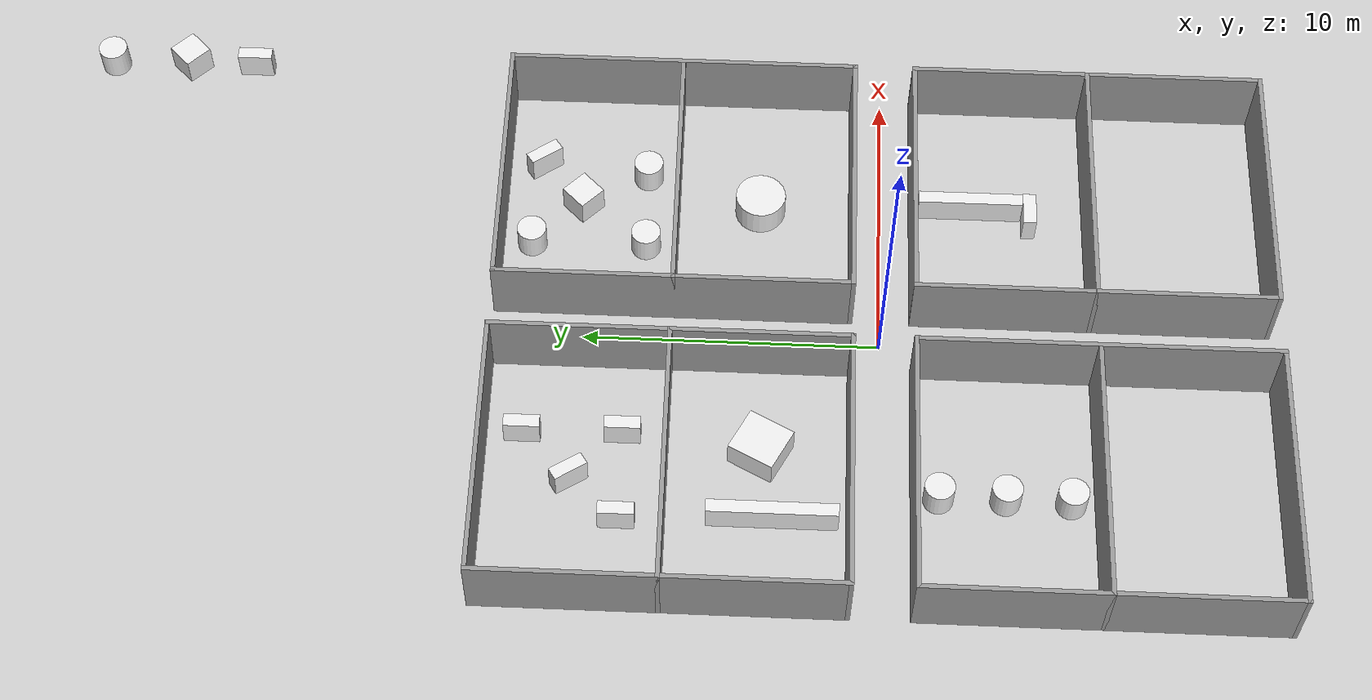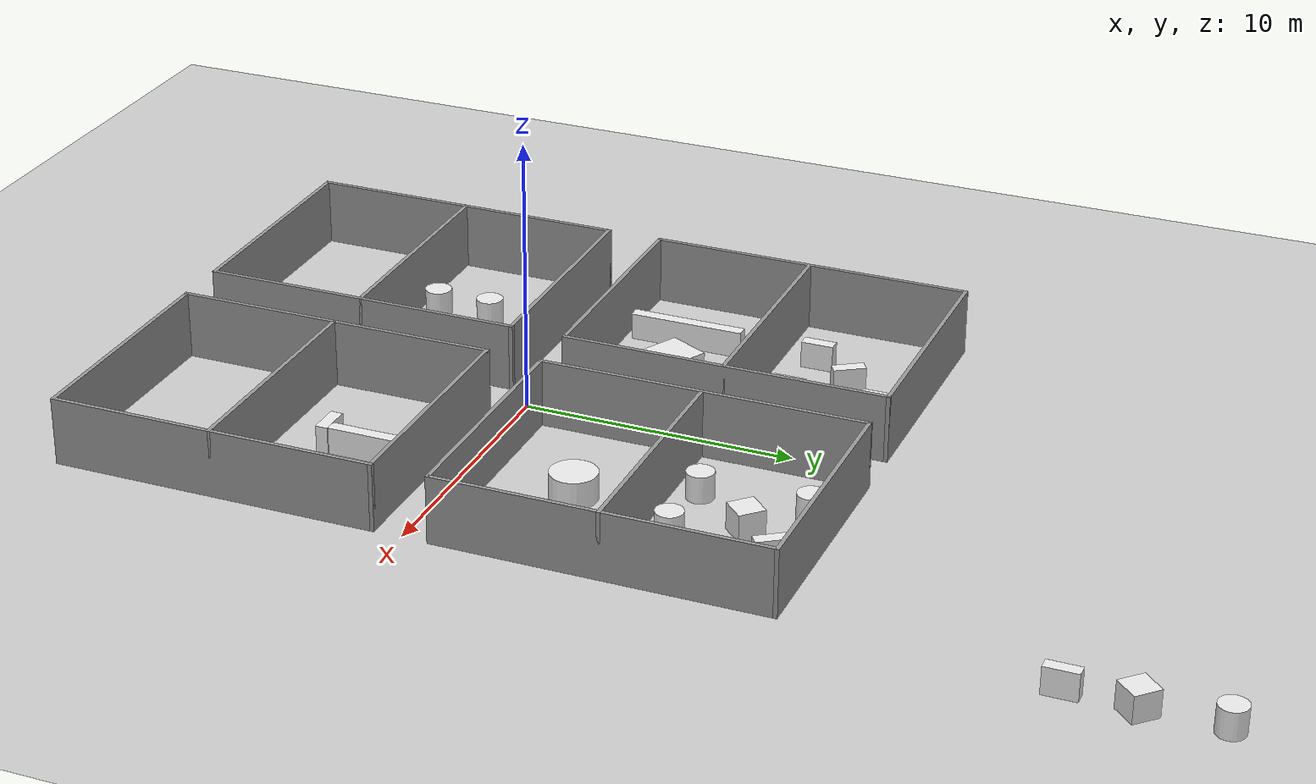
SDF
<sdf version="1.7">
 <world name="default">
  <light name="sun" type="directional">
   <pose>0 0 10 0 -0 0</pose>
   <diffuse>0.8 0.8 0.8 1</diffuse>
   <specular>0.2 0.2 0.2 1</specular>
   <attenuation>
    <range>1000</range>
    <constant>0.9</constant>
    <linear>0.01</linear>
    <quadratic>0.001</quadratic>
   </attenuation>
   <direction>-0.5 0.1 -0.9</direction>
   <spot><inner_angle>0</inner_angle><outer_angle>0</outer_angle><falloff>0</falloff></spot>
  </light>
  <model name="ground_plane">
   <static>1</static>
   <link name="link">
    <collision name="collision">
     <geometry><plane><normal>0 0 1</normal><size>100 100</size></plane></geometry>
     <surface>
      <contact><collide_bitmask>65535</collide_bitmask></contact>
      <friction><ode><mu>100</mu><mu2>50</mu2></ode></friction>
     </surface>
    </collision>
    <visual name="visual">
     <cast_shadows>0</cast_shadows>
     <geometry><plane><normal>0 0 1</normal><size>100 100</size></plane></geometry>
     <material>
      <script><uri>file://media/materials/scripts/gazebo.material</uri><name>Gazebo/Grey</name></script>
     </material>
    </visual>
   </link>
   <static>1</static>
  </model>
  <gravity>0 0 -9.8</gravity>
  <magnetic_field>6e-06 2.3e-05 -4.2e-05</magnetic_field>
  <atmosphere type="adiabatic"/>
  <physics type="ode">
   <max_step_size>0.001</max_step_size>
   <real_time_factor>1</real_time_factor>
   <real_time_update_rate>0</real_time_update_rate>
  </physics>
  <scene><ambient>0.4 0.4 0.4 1</ambient><background>0.7 0.7 0.7 1</background><shadows>1</shadows></scene>
  <spherical_coordinates>
   <surface_model>EARTH_WGS84</surface_model>
   <latitude_deg>0</latitude_deg>
   <longitude_deg>0</longitude_deg>
   <elevation>0</elevation>
   <heading_deg>0</heading_deg>
  </spherical_coordinates>
  <model name="Unit_Room_0">
   <pose>5.0375 6.5375 0 0 -0 0</pose>
   <link name="Wall_11">
    <collision name="Wall_11_Collision">
     <geometry><box><size>12.15 0.15 2.5</size></box></geometry>
     <pose>0 0 1.25 0 -0 0</pose>
    </collision>
    <visual name="Wall_11_Visual">
     <pose>0 0 1.25 0 -0 0</pose>
     <geometry><box><size>12.15 0.15 2.5</size></box></geometry>
     <material>
      <script><uri>file://media/materials/scripts/gazebo.material</uri><name>Gazebo/Grey</name></script>
      <ambient>1 1 1 1</ambient>
     </material>
     <meta><layer>0</layer></meta>
    </visual>
    <pose>4.9625 0.4625 0 0 -0 1.5708</pose>
   </link>
   <link name="Wall_3">
    <collision name="Wall_3_Collision">
     <geometry><box><size>9.15 0.15 2.5</size></box></geometry>
     <pose>0 0 1.25 0 -0 0</pose>
    </collision>
    <visual name="Wall_3_Visual">
     <pose>0 0 1.25 0 -0 0</pose>
     <geometry><box><size>9.15 0.15 2.5</size></box></geometry>
     <material>
      <script><uri>file://media/materials/scripts/gazebo.material</uri><name>Gazebo/Grey</name></script>
      <ambient>1 1 1 1</ambient>
     </material>
     <meta><layer>0</layer></meta>
    </visual>
    <pose>0.4625 -5.5375 0 0 -0 0</pose>
   </link>
   <link name="Wall_5">
    <collision name="Wall_5_Collision">
     <geometry><box><size>9.15 0.15 2.5</size></box></geometry>
     <pose>0 0 1.25 0 -0 0</pose>
    </collision>
    <visual name="Wall_5_Visual">
     <pose>0 0 1.25 0 -0 0</pose>
     <geometry><box><size>9.15 0.15 2.5</size></box></geometry>
     <material>
      <script><uri>file://media/materials/scripts/gazebo.material</uri><name>Gazebo/Grey</name></script>
      <ambient>1 1 1 1</ambient>
     </material>
     <meta><layer>0</layer></meta>
    </visual>
    <pose>0.4625 0.4625 0 0 -0 0</pose>
   </link>
   <link name="Wall_7">
    <collision name="Wall_7_Collision">
     <geometry><box><size>9.15 0.15 2.5</size></box></geometry>
     <pose>0 0 1.25 0 -0 0</pose>
    </collision>
    <visual name="Wall_7_Visual">
     <pose>0 0 1.25 0 -0 0</pose>
     <geometry><box><size>9.15 0.15 2.5</size></box></geometry>
     <material>
      <script><uri>file://media/materials/scripts/gazebo.material</uri><name>Gazebo/Grey</name></script>
      <ambient>1 1 1 1</ambient>
     </material>
     <meta><layer>0</layer></meta>
    </visual>
    <pose>0.4625 6.4625 0 0 -0 0</pose>
   </link>
   <link name="Wall_9">
    <collision name="Wall_9_Collision">
     <geometry><box><size>12.15 0.15 2.5</size></box></geometry>
     <pose>0 0 1.25 0 -0 0</pose>
    </collision>
    <visual name="Wall_9_Visual">
     <pose>0 0 1.25 0 -0 0</pose>
     <geometry><box><size>12.15 0.15 2.5</size></box></geometry>
     <material>
      <script><uri>file://media/materials/scripts/gazebo.material</uri><name>Gazebo/Grey</name></script>
      <ambient>1 1 1 1</ambient>
     </material>
     <meta><layer>0</layer></meta>
    </visual>
    <pose>-4.0375 0.4625 0 0 -0 1.5708</pose>
   </link>
   <static>1</static>
  </model>
  <model name="Unit_Room_1">
   <pose>5.0375 -7.5375 0 0 -0 0</pose>
   <link name="Wall_11">
    <collision name="Wall_11_Collision">
     <geometry><box><size>12.15 0.15 2.5</size></box></geometry>
     <pose>0 0 1.25 0 -0 0</pose>
    </collision>
    <visual name="Wall_11_Visual">
     <pose>0 0 1.25 0 -0 0</pose>
     <geometry><box><size>12.15 0.15 2.5</size></box></geometry>
     <material>
      <script><uri>file://media/materials/scripts/gazebo.material</uri><name>Gazebo/Grey</name></script>
      <ambient>1 1 1 1</ambient>
     </material>
     <meta><layer>0</layer></meta>
    </visual>
    <pose>4.9625 0.4625 0 0 -0 1.5708</pose>
   </link>
   <link name="Wall_3">
    <collision name="Wall_3_Collision">
     <geometry><box><size>9.15 0.15 2.5</size></box></geometry>
     <pose>0 0 1.25 0 -0 0</pose>
    </collision>
    <visual name="Wall_3_Visual">
     <pose>0 0 1.25 0 -0 0</pose>
     <geometry><box><size>9.15 0.15 2.5</size></box></geometry>
     <material>
      <script><uri>file://media/materials/scripts/gazebo.material</uri><name>Gazebo/Grey</name></script>
      <ambient>1 1 1 1</ambient>
     </material>
     <meta><layer>0</layer></meta>
    </visual>
    <pose>0.4625 -5.5375 0 0 -0 0</pose>
   </link>
   <link name="Wall_5">
    <collision name="Wall_5_Collision">
     <geometry><box><size>9.15 0.15 2.5</size></box></geometry>
     <pose>0 0 1.25 0 -0 0</pose>
    </collision>
    <visual name="Wall_5_Visual">
     <pose>0 0 1.25 0 -0 0</pose>
     <geometry><box><size>9.15 0.15 2.5</size></box></geometry>
     <material>
      <script><uri>file://media/materials/scripts/gazebo.material</uri><name>Gazebo/Grey</name></script>
      <ambient>1 1 1 1</ambient>
     </material>
     <meta><layer>0</layer></meta>
    </visual>
    <pose>0.4625 0.4625 0 0 -0 0</pose>
   </link>
   <link name="Wall_7">
    <collision name="Wall_7_Collision">
     <geometry><box><size>9.15 0.15 2.5</size></box></geometry>
     <pose>0 0 1.25 0 -0 0</pose>
    </collision>
    <visual name="Wall_7_Visual">
     <pose>0 0 1.25 0 -0 0</pose>
     <geometry><box><size>9.15 0.15 2.5</size></box></geometry>
     <material>
      <script><uri>file://media/materials/scripts/gazebo.material</uri><name>Gazebo/Grey</name></script>
      <ambient>1 1 1 1</ambient>
     </material>
     <meta><layer>0</layer></meta>
    </visual>
    <pose>0.4625 6.4625 0 0 -0 0</pose>
   </link>
   <link name="Wall_9">
    <collision name="Wall_9_Collision">
     <geometry><box><size>12.15 0.15 2.5</size></box></geometry>
     <pose>0 0 1.25 0 -0 0</pose>
    </collision>
    <visual name="Wall_9_Visual">
     <pose>0 0 1.25 0 -0 0</pose>
     <geometry><box><size>12.15 0.15 2.5</size></box></geometry>
     <material>
      <script><uri>file://media/materials/scripts/gazebo.material</uri><name>Gazebo/Grey</name></script>
      <ambient>1 1 1 1</ambient>
     </material>
     <meta><layer>0</layer></meta>
    </visual>
    <pose>-4.0375 0.4625 0 0 -0 1.5708</pose>
   </link>
   <static>1</static>
  </model>
  <model name="Unit_Room_2">
   <pose>-6.0375 6.5375 0 0 -0 0</pose>
   <link name="Wall_11">
    <collision name="Wall_11_Collision">
     <geometry><box><size>12.15 0.15 2.5</size></box></geometry>
     <pose>0 0 1.25 0 -0 0</pose>
    </collision>
    <visual name="Wall_11_Visual">
     <pose>0 0 1.25 0 -0 0</pose>
     <geometry><box><size>12.15 0.15 2.5</size></box></geometry>
     <material>
      <script><uri>file://media/materials/scripts/gazebo.material</uri><name>Gazebo/Grey</name></script>
      <ambient>1 1 1 1</ambient>
     </material>
     <meta><layer>0</layer></meta>
    </visual>
    <pose>4.9625 0.4625 0 0 -0 1.5708</pose>
   </link>
   <link name="Wall_3">
    <collision name="Wall_3_Collision">
     <geometry><box><size>9.15 0.15 2.5</size></box></geometry>
     <pose>0 0 1.25 0 -0 0</pose>
    </collision>
    <visual name="Wall_3_Visual">
     <pose>0 0 1.25 0 -0 0</pose>
     <geometry><box><size>9.15 0.15 2.5</size></box></geometry>
     <material>
      <script><uri>file://media/materials/scripts/gazebo.material</uri><name>Gazebo/Grey</name></script>
      <ambient>1 1 1 1</ambient>
     </material>
     <meta><layer>0</layer></meta>
    </visual>
    <pose>0.4625 -5.5375 0 0 -0 0</pose>
   </link>
   <link name="Wall_5">
    <collision name="Wall_5_Collision">
     <geometry><box><size>9.15 0.15 2.5</size></box></geometry>
     <pose>0 0 1.25 0 -0 0</pose>
    </collision>
    <visual name="Wall_5_Visual">
     <pose>0 0 1.25 0 -0 0</pose>
     <geometry><box><size>9.15 0.15 2.5</size></box></geometry>
     <material>
      <script><uri>file://media/materials/scripts/gazebo.material</uri><name>Gazebo/Grey</name></script>
      <ambient>1 1 1 1</ambient>
     </material>
     <meta><layer>0</layer></meta>
    </visual>
    <pose>0.4625 0.4625 0 0 -0 0</pose>
   </link>
   <link name="Wall_7">
    <collision name="Wall_7_Collision">
     <geometry><box><size>9.15 0.15 2.5</size></box></geometry>
     <pose>0 0 1.25 0 -0 0</pose>
    </collision>
    <visual name="Wall_7_Visual">
     <pose>0 0 1.25 0 -0 0</pose>
     <geometry><box><size>9.15 0.15 2.5</size></box></geometry>
     <material>
      <script><uri>file://media/materials/scripts/gazebo.material</uri><name>Gazebo/Grey</name></script>
      <ambient>1 1 1 1</ambient>
     </material>
     <meta><layer>0</layer></meta>
    </visual>
    <pose>0.4625 6.4625 0 0 -0 0</pose>
   </link>
   <link name="Wall_9">
    <collision name="Wall_9_Collision">
     <geometry><box><size>12.15 0.15 2.5</size></box></geometry>
     <pose>0 0 1.25 0 -0 0</pose>
    </collision>
    <visual name="Wall_9_Visual">
     <pose>0 0 1.25 0 -0 0</pose>
     <geometry><box><size>12.15 0.15 2.5</size></box></geometry>
     <material>
      <script><uri>file://media/materials/scripts/gazebo.material</uri><name>Gazebo/Grey</name></script>
      <ambient>1 1 1 1</ambient>
     </material>
     <meta><layer>0</layer></meta>
    </visual>
    <pose>-4.0375 0.4625 0 0 -0 1.5708</pose>
   </link>
   <static>1</static>
  </model>
  <model name="Unit_Room_3">
   <pose>-6.0375 -7.5375 0 0 -0 0</pose>
   <link name="Wall_11">
    <collision name="Wall_11_Collision">
     <geometry><box><size>12.15 0.15 2.5</size></box></geometry>
     <pose>0 0 1.25 0 -0 0</pose>
    </collision>
    <visual name="Wall_11_Visual">
     <pose>0 0 1.25 0 -0 0</pose>
     <geometry><box><size>12.15 0.15 2.5</size></box></geometry>
     <material>
      <script><uri>file://media/materials/scripts/gazebo.material</uri><name>Gazebo/Grey</name></script>
      <ambient>1 1 1 1</ambient>
     </material>
     <meta><layer>0</layer></meta>
    </visual>
    <pose>4.9625 0.4625 0 0 -0 1.5708</pose>
   </link>
   <link name="Wall_3">
    <collision name="Wall_3_Collision">
     <geometry><box><size>9.15 0.15 2.5</size></box></geometry>
     <pose>0 0 1.25 0 -0 0</pose>
    </collision>
    <visual name="Wall_3_Visual">
     <pose>0 0 1.25 0 -0 0</pose>
     <geometry><box><size>9.15 0.15 2.5</size></box></geometry>
     <material>
      <script><uri>file://media/materials/scripts/gazebo.material</uri><name>Gazebo/Grey</name></script>
      <ambient>1 1 1 1</ambient>
     </material>
     <meta><layer>0</layer></meta>
    </visual>
    <pose>0.4625 -5.5375 0 0 -0 0</pose>
   </link>
   <link name="Wall_5">
    <collision name="Wall_5_Collision">
     <geometry><box><size>9.15 0.15 2.5</size></box></geometry>
     <pose>0 0 1.25 0 -0 0</pose>
    </collision>
    <visual name="Wall_5_Visual">
     <pose>0 0 1.25 0 -0 0</pose>
     <geometry><box><size>9.15 0.15 2.5</size></box></geometry>
     <material>
      <script><uri>file://media/materials/scripts/gazebo.material</uri><name>Gazebo/Grey</name></script>
      <ambient>1 1 1 1</ambient>
     </material>
     <meta><layer>0</layer></meta>
    </visual>
    <pose>0.4625 0.4625 0 0 -0 0</pose>
   </link>
   <link name="Wall_7">
    <collision name="Wall_7_Collision">
     <geometry><box><size>9.15 0.15 2.5</size></box></geometry>
     <pose>0 0 1.25 0 -0 0</pose>
    </collision>
    <visual name="Wall_7_Visual">
     <pose>0 0 1.25 0 -0 0</pose>
     <geometry><box><size>9.15 0.15 2.5</size></box></geometry>
     <material>
      <script><uri>file://media/materials/scripts/gazebo.material</uri><name>Gazebo/Grey</name></script>
      <ambient>1 1 1 1</ambient>
     </material>
     <meta><layer>0</layer></meta>
    </visual>
    <pose>0.4625 6.4625 0 0 -0 0</pose>
   </link>
   <link name="Wall_9">
    <collision name="Wall_9_Collision">
     <geometry><box><size>12.15 0.15 2.5</size></box></geometry>
     <pose>0 0 1.25 0 -0 0</pose>
    </collision>
    <visual name="Wall_9_Visual">
     <pose>0 0 1.25 0 -0 0</pose>
     <geometry><box><size>12.15 0.15 2.5</size></box></geometry>
     <material>
      <script><uri>file://media/materials/scripts/gazebo.material</uri><name>Gazebo/Grey</name></script>
      <ambient>1 1 1 1</ambient>
     </material>
     <meta><layer>0</layer></meta>
    </visual>
    <pose>-4.0375 0.4625 0 0 -0 1.5708</pose>
   </link>
   <static>1</static>
  </model>
  <model name="unit_cylinder_0">
   <pose>10.8699 27.5125 0.5 0 -0 0</pose>
   <link name="link">
    <inertial>
     <mass>1</mass>
     <inertia><ixx>0.145833</ixx><ixy>0</ixy><ixz>0</ixz><iyy>0.145833</iyy><iyz>0</iyz><izz>0.125</izz></inertia>
    </inertial>
    <collision name="collision">
     <geometry><cylinder><radius>0.5</radius><length>1</length></cylinder></geometry>
    </collision>
    <visual name="visual">
     <geometry><cylinder><radius>0.5</radius><length>1</length></cylinder></geometry>
     <material>
      <script><name>Gazebo/White</name><uri>file://media/materials/scripts/gazebo.material</uri></script>
     </material>
    </visual>
   </link>
   <static>1</static>
  </model>
  <model name="unit_box_0">
   <pose>10.9294 24.7304 0.5 0 0 -0.78</pose>
   <link name="link">
    <inertial>
     <mass>1</mass>
     <inertia>
      <ixx>0.166667</ixx>
      <ixy>0</ixy>
      <ixz>0</ixz>
      <iyy>0.166667</iyy>
      <iyz>0</iyz>
      <izz>0.166667</izz>
     </inertia>
    </inertial>
    <collision name="collision"><geometry><box><size>1 1 1</size></box></geometry></collision>
    <visual name="visual">
     <geometry><box><size>1 1 1</size></box></geometry>
     <material>
      <script><name>Gazebo/White</name><uri>file://media/materials/scripts/gazebo.material</uri></script>
     </material>
    </visual>
   </link>
   <static>1</static>
  </model>
  <model name="unit_wall_0">
   <pose>10.8513 22.382 0.5 0 -0 0</pose>
   <link name="link">
    <inertial>
     <mass>1</mass>
     <inertia>
      <ixx>0.166667</ixx>
      <ixy>0</ixy>
      <ixz>0</ixz>
      <iyy>0.166667</iyy>
      <iyz>0</iyz>
      <izz>0.166667</izz>
     </inertia>
    </inertial>
    <collision name="collision"><geometry><box><size>0.45 1.2 1</size></box></geometry></collision>
    <visual name="visual">
     <geometry><box><size>0.45 1.2 1</size></box></geometry>
     <material>
      <script><name>Gazebo/White</name><uri>file://media/materials/scripts/gazebo.material</uri></script>
     </material>
    </visual>
   </link>
   <static>1</static>
  </model>
  <model name="unit_cylinder_0_clone_0">
   <pose>3.73622 8.03703 0.5 0 -0 0</pose>
   <link name="link">
    <inertial>
     <mass>1</mass>
     <inertia><ixx>0.145833</ixx><ixy>0</ixy><ixz>0</ixz><iyy>0.145833</iyy><iyz>0</iyz><izz>0.125</izz></inertia>
    </inertial>
    <collision name="collision">
     <geometry><cylinder><radius>0.5</radius><length>1</length></cylinder></geometry>
    </collision>
    <visual name="visual">
     <geometry><cylinder><radius>0.5</radius><length>1</length></cylinder></geometry>
     <material>
      <script><name>Gazebo/White</name><uri>file://media/materials/scripts/gazebo.material</uri></script>
     </material>
    </visual>
   </link>
   <static>1</static>
  </model>
  <model name="unit_cylinder_0_clone_1">
   <pose>6.63407 8.07121 0.5 0 -0 0</pose>
   <link name="link">
    <inertial>
     <mass>1</mass>
     <inertia><ixx>0.145833</ixx><ixy>0</ixy><ixz>0</ixz><iyy>0.145833</iyy><iyz>0</iyz><izz>0.125</izz></inertia>
    </inertial>
    <collision name="collision">
     <geometry><cylinder><radius>0.5</radius><length>1</length></cylinder></geometry>
    </collision>
    <visual name="visual">
     <geometry><cylinder><radius>0.5</radius><length>1</length></cylinder></geometry>
     <material>
      <script><name>Gazebo/White</name><uri>file://media/materials/scripts/gazebo.material</uri></script>
     </material>
    </visual>
   </link>
   <static>1</static>
  </model>
  <model name="unit_cylinder_0_clone_3">
   <pose>3.72585 11.9534 0.5 0 -0 0</pose>
   <link name="link">
    <inertial>
     <mass>1</mass>
     <inertia><ixx>0.145833</ixx><ixy>0</ixy><ixz>0</ixz><iyy>0.145833</iyy><iyz>0</iyz><izz>0.125</izz></inertia>
    </inertial>
    <collision name="collision">
     <geometry><cylinder><radius>0.5</radius><length>1</length></cylinder></geometry>
    </collision>
    <visual name="visual">
     <geometry><cylinder><radius>0.5</radius><length>1</length></cylinder></geometry>
     <material>
      <script><name>Gazebo/White</name><uri>file://media/materials/scripts/gazebo.material</uri></script>
     </material>
    </visual>
   </link>
   <static>1</static>
  </model>
  <model name="unit_cylinder_0_clone_4">
   <pose>5.40696 4.14145 0.5 0 -0 0</pose>
   <link name="link">
    <inertial>
     <mass>1</mass>
     <inertia><ixx>0.145833</ixx><ixy>0</ixy><ixz>0</ixz><iyy>0.145833</iyy><iyz>0</iyz><izz>0.125</izz></inertia>
    </inertial>
    <collision name="collision">
     <geometry><cylinder><radius>0.854833</radius><length>1</length></cylinder></geometry>
    </collision>
    <visual name="visual">
     <geometry><cylinder><radius>0.854833</radius><length>1</length></cylinder></geometry>
     <material>
      <script><name>Gazebo/White</name><uri>file://media/materials/scripts/gazebo.material</uri></script>
     </material>
    </visual>
   </link>
   <static>1</static>
  </model>
  <model name="unit_wall_0_clone">
   <pose>6.97668 11.7349 0.5 0 -0 0.609128</pose>
   <link name="link">
    <inertial>
     <mass>1</mass>
     <inertia>
      <ixx>0.166667</ixx>
      <ixy>0</ixy>
      <ixz>0</ixz>
      <iyy>0.166667</iyy>
      <iyz>0</iyz>
      <izz>0.166667</izz>
     </inertia>
    </inertial>
    <collision name="collision"><geometry><box><size>0.45 1.2 1</size></box></geometry></collision>
    <visual name="visual">
     <geometry><box><size>0.45 1.2 1</size></box></geometry>
     <material>
      <script><name>Gazebo/White</name><uri>file://media/materials/scripts/gazebo.material</uri></script>
     </material>
    </visual>
   </link>
   <static>1</static>
  </model>
  <model name="unit_wall_0_clone_0">
   <pose>5.61031 -3.09266 0.5 0 -0 0</pose>
   <link name="link">
    <inertial>
     <mass>1</mass>
     <inertia>
      <ixx>0.166667</ixx>
      <ixy>0</ixy>
      <ixz>0</ixz>
      <iyy>0.166667</iyy>
      <iyz>0</iyz>
      <izz>0.166667</izz>
     </inertia>
    </inertial>
    <collision name="collision"><geometry><box><size>0.45 3.56639 1</size></box></geometry></collision>
    <visual name="visual">
     <geometry><box><size>0.45 3.56639 1</size></box></geometry>
     <material>
      <script><name>Gazebo/White</name><uri>file://media/materials/scripts/gazebo.material</uri></script>
     </material>
    </visual>
   </link>
   <static>1</static>
  </model>
  <model name="unit_wall_0_clone_2">
   <pose>5.26681 -5.11402 0.5 0 -0 1.56632</pose>
   <link name="link">
    <inertial>
     <mass>1</mass>
     <inertia>
      <ixx>0.166667</ixx>
      <ixy>0</ixy>
      <ixz>0</ixz>
      <iyy>0.166667</iyy>
      <iyz>0</iyz>
      <izz>0.166667</izz>
     </inertia>
    </inertial>
    <collision name="collision"><geometry><box><size>0.45 1.18537 1</size></box></geometry></collision>
    <visual name="visual">
     <geometry><box><size>0.45 1.18537 1</size></box></geometry>
     <material>
      <script><name>Gazebo/White</name><uri>file://media/materials/scripts/gazebo.material</uri></script>
     </material>
    </visual>
   </link>
   <static>1</static>
  </model>
  <model name="unit_box_0_clone">
   <pose>5.39094 10.2805 0.5 0 0 -0.78</pose>
   <link name="link">
    <inertial>
     <mass>1</mass>
     <inertia>
      <ixx>0.166667</ixx>
      <ixy>0</ixy>
      <ixz>0</ixz>
      <iyy>0.166667</iyy>
      <iyz>0</iyz>
      <izz>0.166667</izz>
     </inertia>
    </inertial>
    <collision name="collision"><geometry><box><size>1 1 1</size></box></geometry></collision>
    <visual name="visual">
     <geometry><box><size>1 1 1</size></box></geometry>
     <material>
      <script><name>Gazebo/White</name><uri>file://media/materials/scripts/gazebo.material</uri></script>
     </material>
    </visual>
   </link>
   <static>1</static>
  </model>
  <model name="unit_wall_0_clone_3">
   <pose>-6.75064 3.47389 0.5 0 -0 0</pose>
   <link name="link">
    <inertial>
     <mass>1</mass>
     <inertia>
      <ixx>0.166667</ixx>
      <ixy>0</ixy>
      <ixz>0</ixz>
      <iyy>0.166667</iyy>
      <iyz>0</iyz>
      <izz>0.166667</izz>
     </inertia>
    </inertial>
    <collision name="collision"><geometry><box><size>0.45 4.29462 1</size></box></geometry></collision>
    <visual name="visual">
     <geometry><box><size>0.45 4.29462 1</size></box></geometry>
     <material>
      <script><name>Gazebo/White</name><uri>file://media/materials/scripts/gazebo.material</uri></script>
     </material>
    </visual>
   </link>
   <static>1</static>
  </model>
  <model name="unit_box_0_clone_0">
   <pose>-4.24836 3.89372 0.5 0 0 -0.485362</pose>
   <link name="link">
    <inertial>
     <mass>1</mass>
     <inertia>
      <ixx>0.166667</ixx>
      <ixy>0</ixy>
      <ixz>0</ixz>
      <iyy>0.166667</iyy>
      <iyz>0</iyz>
      <izz>0.166667</izz>
     </inertia>
    </inertial>
    <collision name="collision"><geometry><box><size>1.53694 1.63434 1</size></box></geometry></collision>
    <visual name="visual">
     <geometry><box><size>1.53694 1.63434 1</size></box></geometry>
     <material>
      <script><name>Gazebo/White</name><uri>file://media/materials/scripts/gazebo.material</uri></script>
     </material>
    </visual>
   </link>
   <static>1</static>
  </model>
  <model name="unit_wall_0_clone_4">
   <pose>-3.87813 11.7462 0.5 0 -0 0</pose>
   <link name="link">
    <inertial>
     <mass>1</mass>
     <inertia>
      <ixx>0.166667</ixx>
      <ixy>0</ixy>
      <ixz>0</ixz>
      <iyy>0.166667</iyy>
      <iyz>0</iyz>
      <izz>0.166667</izz>
     </inertia>
    </inertial>
    <collision name="collision"><geometry><box><size>0.45 1.2 1</size></box></geometry></collision>
    <visual name="visual">
     <geometry><box><size>0.45 1.2 1</size></box></geometry>
     <material>
      <script><name>Gazebo/White</name><uri>file://media/materials/scripts/gazebo.material</uri></script>
     </material>
    </visual>
   </link>
   <static>1</static>
  </model>
  <model name="unit_wall_0_clone_5">
   <pose>-6.96716 8.49331 0.5 0 -0 0</pose>
   <link name="link">
    <inertial>
     <mass>1</mass>
     <inertia>
      <ixx>0.166667</ixx>
      <ixy>0</ixy>
      <ixz>0</ixz>
      <iyy>0.166667</iyy>
      <iyz>0</iyz>
      <izz>0.166667</izz>
     </inertia>
    </inertial>
    <collision name="collision"><geometry><box><size>0.45 1.2 1</size></box></geometry></collision>
    <visual name="visual">
     <geometry><box><size>0.45 1.2 1</size></box></geometry>
     <material>
      <script><name>Gazebo/White</name><uri>file://media/materials/scripts/gazebo.material</uri></script>
     </material>
    </visual>
   </link>
   <static>1</static>
  </model>
  <model name="unit_wall_0_clone_6">
   <pose>-5.51534 10.12 0.5 0 -0 0.575616</pose>
   <link name="link">
    <inertial>
     <mass>1</mass>
     <inertia>
      <ixx>0.166667</ixx>
      <ixy>0</ixy>
      <ixz>0</ixz>
      <iyy>0.166667</iyy>
      <iyz>0</iyz>
      <izz>0.166667</izz>
     </inertia>
    </inertial>
    <collision name="collision"><geometry><box><size>0.45 1.2 1</size></box></geometry></collision>
    <visual name="visual">
     <geometry><box><size>0.45 1.2 1</size></box></geometry>
     <material>
      <script><name>Gazebo/White</name><uri>file://media/materials/scripts/gazebo.material</uri></script>
     </material>
    </visual>
   </link>
   <static>1</static>
  </model>
  <model name="unit_wall_0_clone_7">
   <pose>-3.79732 8.44584 0.5 0 -0 0</pose>
   <link name="link">
    <inertial>
     <mass>1</mass>
     <inertia>
      <ixx>0.166667</ixx>
      <ixy>0</ixy>
      <ixz>0</ixz>
      <iyy>0.166667</iyy>
      <iyz>0</iyz>
      <izz>0.166667</izz>
     </inertia>
    </inertial>
    <collision name="collision"><geometry><box><size>0.45 1.2 1</size></box></geometry></collision>
    <visual name="visual">
     <geometry><box><size>0.45 1.2 1</size></box></geometry>
     <material>
      <script><name>Gazebo/White</name><uri>file://media/materials/scripts/gazebo.material</uri></script>
     </material>
    </visual>
   </link>
   <static>1</static>
  </model>
  <model name="unit_cylinder_0_clone">
   <pose>-5.7361 -1.90782 0.5 0 -0 0</pose>
   <link name="link">
    <inertial>
     <mass>1</mass>
     <inertia><ixx>0.145833</ixx><ixy>0</ixy><ixz>0</ixz><iyy>0.145833</iyy><iyz>0</iyz><izz>0.125</izz></inertia>
    </inertial>
    <collision name="collision">
     <geometry><cylinder><radius>0.5</radius><length>1</length></cylinder></geometry>
    </collision>
    <visual name="visual">
     <geometry><cylinder><radius>0.5</radius><length>1</length></cylinder></geometry>
     <material>
      <script><name>Gazebo/White</name><uri>file://media/materials/scripts/gazebo.material</uri></script>
     </material>
    </visual>
   </link>
   <static>1</static>
  </model>
  <model name="unit_cylinder_0_clone_2">
   <pose>-5.72267 -4.08612 0.5 0 -0 0</pose>
   <link name="link">
    <inertial>
     <mass>1</mass>
     <inertia><ixx>0.145833</ixx><ixy>0</ixy><ixz>0</ixz><iyy>0.145833</iyy><iyz>0</iyz><izz>0.125</izz></inertia>
    </inertial>
    <collision name="collision">
     <geometry><cylinder><radius>0.5</radius><length>1</length></cylinder></geometry>
    </collision>
    <visual name="visual">
     <geometry><cylinder><radius>0.5</radius><length>1</length></cylinder></geometry>
     <material>
      <script><name>Gazebo/White</name><uri>file://media/materials/scripts/gazebo.material</uri></script>
     </material>
    </visual>
   </link>
   <static>1</static>
  </model>
  <model name="unit_cylinder_0_clone_5">
   <pose>-5.75661 -6.21466 0.5 0 -0 0</pose>
   <link name="link">
    <inertial>
     <mass>1</mass>
     <inertia><ixx>0.145833</ixx><ixy>0</ixy><ixz>0</ixz><iyy>0.145833</iyy><iyz>0</iyz><izz>0.125</izz></inertia>
    </inertial>
    <collision name="collision">
     <geometry><cylinder><radius>0.5</radius><length>1</length></cylinder></geometry>
    </collision>
    <visual name="visual">
     <geometry><cylinder><radius>0.5</radius><length>1</length></cylinder></geometry>
     <material>
      <script><name>Gazebo/White</name><uri>file://media/materials/scripts/gazebo.material</uri></script>
     </material>
    </visual>
   </link>
   <static>1</static>
  </model>
 </world>
</sdf>
